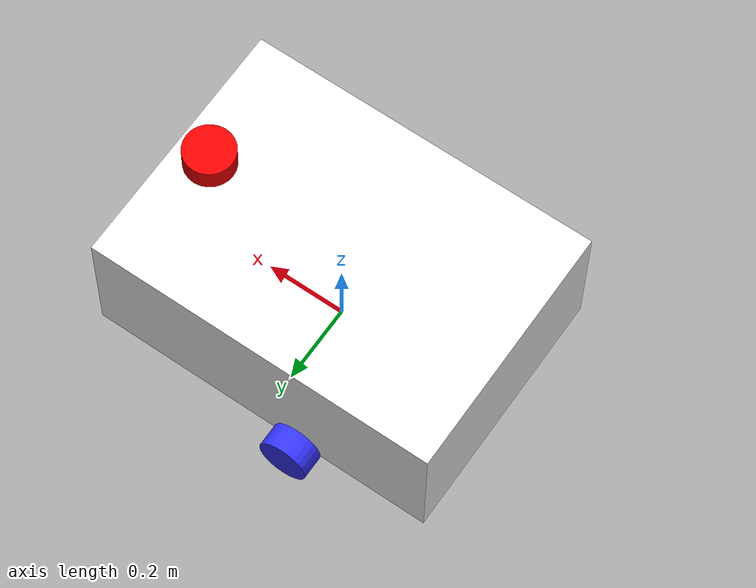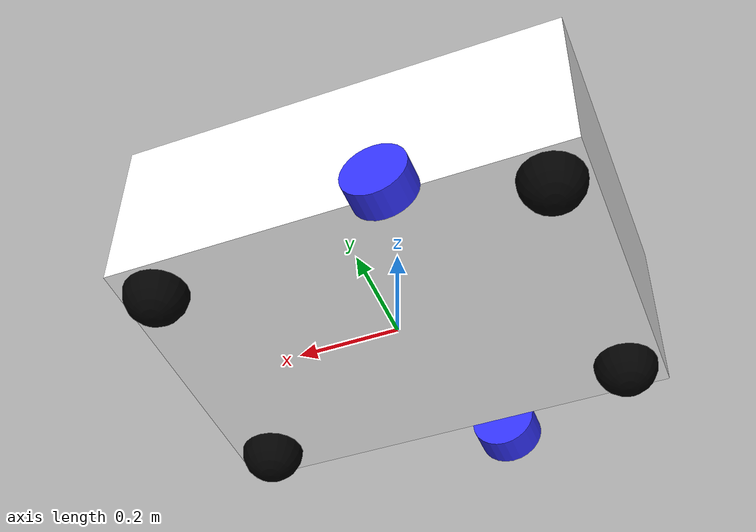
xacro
<?xml version="1.0"?>
<robot xmlns:xacro="http://www.ros.org/wiki/xacro"  name="robot">

    <xacro:arg name="use_ros2_control" default="true"/>
    <xacro:arg name="sim_mode" default="false"/>

    <xacro:include filename="robot_core.xacro" />

    <xacro:if value="$(arg use_ros2_control)">
        <xacro:include filename="ros2_control.xacro" />
    </xacro:if>
    <xacro:unless value="$(arg use_ros2_control)">
        <xacro:include filename="gazebo_control.xacro" />
    </xacro:unless>
    <xacro:include filename="lidar.xacro" />
    <xacro:include filename="camera.xacro" />

</robot>

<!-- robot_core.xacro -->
<robot xmlns:xacro="http://www.ros.org/wiki/xacro" >

    <xacro:include filename="inertial_macros.xacro"/>

    <material name="white">
        <color rgba="1 1 1 1" />
    </material>

    <material name="orange">
        <color rgba="1 0.3 0.1 1"/>
    </material>

    <material name="blue">
        <color rgba="0.2 0.2 1 1"/>
    </material>

    <material name="black">
        <color rgba="0 0 0 1"/>
    </material>
    <material name="red">
        <color rgba="1 0 0 1"/>
    </material>

    <!-- BASE LINK -->

    <link name="base_link">

    </link>
    <!-- BASE_FOOTPRINT LINK -->

    <joint name="base_footprint_joint" type="fixed">
        <parent link="base_link"/>
        <child link="base_footprint"/>
        <origin xyz="0 0 0" rpy="0 0 0"/>
    </joint>

    <link name="base_footprint">
    </link>

    <!-- CHASSIS LINK -->
 <joint name="chassis_joint" type="fixed">
        <parent link="base_link"/>
        <child link="chassis"/>
        <origin xyz="-0.445 0 0"/>
    </joint>

    <link name="chassis">
        <visual>
            <origin xyz="0.445 0 0.175"/>
            <geometry>
                <box size="0.89 0.64 0.35"/>
            </geometry>
            <material name="white"/>
        </visual>
        <collision>
            <origin xyz="0.445 0 0.175"/>
            <geometry>
                <box size="0.89 0.64 0.35"/>
            </geometry>
        </collision>
        <xacro:inertial_box mass="8" x="0.89" y="0.64" z="0.35">
            <origin xyz="0.445 0 0.175" rpy="0 0 0"/>
        </xacro:inertial_box>

    </link>
    <gazebo reference="chassis">
    <material>Gazebo/White</material>
</gazebo>

<!-- LEFT WHEEL -->

<joint name="left_wheel_joint" type="continuous">
    <parent link="base_link"/>
    <child link="left_wheel"/>
    <origin xyz="-0.103 0.35 0" rpy="-${pi/2} 0 0"/>
    <axis xyz="0 0 1"/>
</joint>

<link name="left_wheel">
    <visual>
        <geometry>
            <cylinder length="0.06" radius="0.0626" />
        </geometry>
        <material name="blue"/>
    </visual>
    <collision>
        <geometry>
            <cylinder length="0.06" radius="0.0626" />
        </geometry>
    </collision>
    <xacro:inertial_cylinder mass="0.1" length="0.06" radius="0.0626">
            <origin xyz="0 0 0" rpy="0 0 0"/>
        </xacro:inertial_cylinder>
</link>
<gazebo reference="left_wheel">
    <material>Gazebo/Blue</material>
</gazebo>

<!-- RIGHT WHEEL LINK -->

<joint name="right_wheel_joint" type="continuous">
    <parent link="base_link"/>
    <child link="right_wheel"/>
    <origin xyz="-0.103 -0.35 0" rpy="${pi/2} 0 0"/>
    <axis xyz="0 0 -1"/>
</joint>

<link name="right_wheel">
    <visual>
        <geometry>
            <cylinder length="0.06" radius="0.0626" />
        </geometry>
        <material name="blue"/>
    </visual>
    <collision>
        <geometry>
            <cylinder length="0.06" radius="0.0626" />
        </geometry>
    </collision>
    <xacro:inertial_cylinder mass="0.1" length="0.06" radius="0.0626">
            <origin xyz="0 0 0" rpy="0 0 0"/>
        </xacro:inertial_cylinder>

</link>
<gazebo reference="right_wheel">
    <material>Gazebo/Blue</material>
</gazebo>

<!-- FRONT CASTER WHEEL LINK -->

    <joint name="front_caster_wheel_joint" type="fixed">
        <parent link="chassis"/>
        <child link="front_caster_wheel"/>
        <origin xyz="0.82 -0.25 0"/>

    </joint>

    <link name="front_caster_wheel">
        <visual>
            <geometry>
                <sphere radius="0.0625"/>
            </geometry>
            <material name="black"/>
        </visual>
        <collision>
            <geometry>
                <sphere radius="0.0625"/>
            </geometry>
            <material name="black"/>
        </collision>
        <xacro:inertial_sphere mass="0.1" radius="0.0625">
            <origin xyz="0 0 0" rpy="0 0 0"/>
        </xacro:inertial_sphere>
    </link>
    <gazebo reference="front_caster_wheel">
    <material>Gazebo/Black</material>
</gazebo>

<!-- FRONT CASTER LEFT WHEEL LINK-->
    <joint name="front_caster_left_wheel_joint" type="fixed">
        <parent link="chassis"/>
        <child link="front_caster_left_wheel"/>
        <origin xyz="0.82 0.25 0"/>

    </joint>

    <link name="front_caster_left_wheel">
        <visual>
            <geometry>
                <sphere radius="0.0625"/>
            </geometry>
            <material name="black"/>
        </visual>
        <collision>
            <geometry>
                <sphere radius="0.0625"/>
            </geometry>
            <material name="black"/>
        </collision>
        <xacro:inertial_sphere mass="0.1" radius="0.0625">
            <origin xyz="0 0 0" rpy="0 0 0"/>
        </xacro:inertial_sphere>
    </link>
    <gazebo reference="front_caster_left_wheel">
    <material>Gazebo/Black</material>
</gazebo>

    <!-- BACK CASTER LEFT WHEEL LINK -->

        <joint name="back_caster_left_wheel_joint" type="fixed">
        <parent link="chassis"/>
        <child link="back_caster_left_wheel"/>
        <origin xyz="0.07 -0.25 0"/>

    </joint>

    <link name="back_caster_left_wheel">
        <visual>
            <geometry>
                <sphere radius="0.0625"/>
            </geometry>
            <material name="black"/>
        </visual>
        <collision>
            <geometry>
                <sphere radius="0.0625"/>
            </geometry>
            <material name="black"/>
        </collision>
        <xacro:inertial_sphere mass="0.1" radius="0.0625">
            <origin xyz="0 0 0" rpy="0 0 0"/>
        </xacro:inertial_sphere>
    </link>
    <gazebo reference="back_caster_left_wheel">
    <material>Gazebo/Black</material>
    <mu1 value="0.001"/>
    <mu2 value="0.001"/>

</gazebo>

    <!-- BACK CASTER RIGHT WHEEL LINK -->

        <joint name="back_caster_right_wheel_joint" type="fixed">
        <parent link="chassis"/>
        <child link="back_caster_right_wheel"/>
        <origin xyz="0.07 0.25 0"/>

    </joint>

    <link name="back_caster_right_wheel">
        <visual>
            <geometry>
                <sphere radius="0.0625"/>
            </geometry>
            <material name="black"/>
        </visual>
        <collision>
            <geometry>
                <sphere radius="0.0625"/>
            </geometry>
            <material name="black"/>
        </collision>
        <xacro:inertial_sphere mass="0.1" radius="0.0625">
            <origin xyz="0 0 0" rpy="0 0 0"/>
        </xacro:inertial_sphere>
    </link>
    <gazebo reference="back_caster_right_wheel">
    <material>Gazebo/Black</material>

</gazebo>

</robot>

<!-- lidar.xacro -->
<robot xmlns:xacro="http://www.ros.org/wiki/xacro" >

  <joint name="lase_joint" type="fixed">
      <parent link="chassis"/>
      <child link="laser_frame"/>
      <origin xyz="0.8 0 0.38" rpy="0 0 0"/>

  </joint>
  <link name="laser_frame">
     <visual>
        <geometry>
            <cylinder length="0.06" radius="0.06265" />
        </geometry>
        <material name="red"/>
    </visual>
    <collision>
        <geometry>
            <cylinder length="0.06" radius="0.06265" />
        </geometry>
    </collision>
    <xacro:inertial_cylinder mass="0.1" length="0.06" radius="0.06265">
            <origin xyz="0 0 0" rpy="0 0 0"/>
        </xacro:inertial_cylinder>

  </link>

    <gazebo reference="laser_frame">
        <material>Gazebo/Red</material>

        <sensor name="laser" type="ray">
            <pose> 0 0 0 0 0 0 </pose>
            <visualize>true</visualize>
            <update_rate>10</update_rate>
            <ray>
                <scan>
                    <horizontal>
                        <samples>360</samples>
                        <min_angle>-3.14</min_angle>
                        <max_angle>3.14</max_angle>
                    </horizontal>
                </scan>
                <range>
                    <min>0.3</min>
                    <max>12</max>
                </range>
            </ray>
            <plugin name="laser_controller" filename="libgazebo_ros_ray_sensor.so">
                <ros>
                    <argument>~/out:=scan</argument>
                </ros>
                <output_type>sensor_msgs/LaserScan</output_type>
                <frame_name>laser_frame</frame_name>
            </plugin>
        </sensor>
    </gazebo>

</robot>

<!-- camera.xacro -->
<robot xmlns:xacro="http://www.ros.org/wiki/xacro" >

    <joint name="camera_joint" type="fixed">
        <parent link="chassis"/>
        <child link="camera_link"/>
        <origin xyz="0.895 0 0.18" rpy="0 0 0"/>
    </joint>

    <link name="camera_link">
        <visual>
            <geometry>
                <box size="0.010 0.03 0.03"/>
            </geometry>
            <material name="red"/>
        </visual>
    </link>

    <joint name="camera_optical_joint" type="fixed">
        <parent link="camera_link"/>
        <child link="camera_link_optical"/>
        <origin xyz="0 0 0" rpy="${-pi/2} 0 ${-pi/2}"/>
    </joint>

    <link name="camera_link_optical"></link>

    <gazebo reference="camera_link">
        <material>Gazebo/Red</material>

        <sensor name="camera" type="camera">
            <pose> 0 0 0 0 0 0 </pose>
            <visualize>true</visualize>
            <update_rate>10</update_rate>
            <camera>
                <horizontal_fov>1.089</horizontal_fov>
                <image>
                    <format>R8G8B8</format>
                    <width>640</width>
                    <height>480</height>
                </image>
                <clip>
                    <near>0.05</near>
                    <far>8.0</far>
                </clip>
            </camera>
            <plugin name="camera_controller" filename="libgazebo_ros_camera.so">
                <frame_name>camera_link_optical</frame_name>
            </plugin>
        </sensor>
    </gazebo>

</robot>
